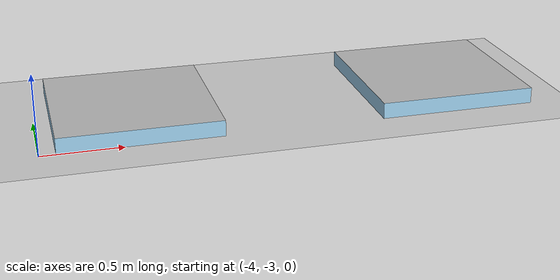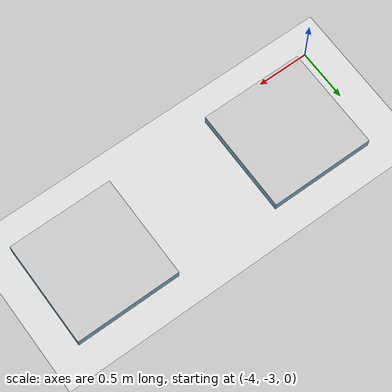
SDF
<sdf version='1.9'>
  <world name='bouncing_world/bouncing_world'>
    <physics type="ode">
      <max_step_size>0.001</max_step_size>
      <real_time_factor>1</real_time_factor>
      <real_time_update_rate>1000</real_time_update_rate>
    </physics>
    <gravity>0 0 -9.8</gravity>
    <magnetic_field>6e-06 2.3e-05 -4.2e-05</magnetic_field>
    <atmosphere type='adiabatic'/>
    <scene>
      <ambient>0.4 0.4 0.4 1</ambient>
      <background>0.7 0.7 0.7 1</background>
      <shadows>true</shadows>
    </scene>
    <model name='ground_plane'>
      <static>true</static>
      <link name='link'>
        <collision name='collision'>
          <geometry>
            <plane>
              <normal>0 0 1</normal>
              <size>100 100</size>
            </plane>
          </geometry>
          <surface>
            <friction>
              <ode/>
            </friction>
            <bounce/>
            <contact/>
          </surface>
        </collision>
        <visual name='visual'>
          <geometry>
            <plane>
              <normal>0 0 1</normal>
              <size>100 100</size>
            </plane>
          </geometry>
          <material>
            <ambient>0.8 0.8 0.8 1</ambient>
            <diffuse>0.8 0.8 0.8 1</diffuse>
            <specular>0.8 0.8 0.8 1</specular>
          </material>
        </visual>
        <pose>0 0 0 0 -0 0</pose>
        <inertial>
          <pose>0 0 0 0 -0 0</pose>
          <mass>1</mass>
          <inertia>
            <ixx>1</ixx>
            <ixy>0</ixy>
            <ixz>0</ixz>
            <iyy>1</iyy>
            <iyz>0</iyz>
            <izz>1</izz>
          </inertia>
        </inertial>
        <enable_wind>false</enable_wind>
      </link>
      <pose>0 0 0 0 -0 0</pose>
      <self_collide>false</self_collide>
    </model>

    <model name='square_panel'>
      <link name='link'>
        <visual name='visual'>
          <geometry>
            <mesh>
              <uri>assets/square_panel.dae</uri>
            </mesh>
          </geometry>
        </visual>
        <collision name='collision'>
          <geometry>
            <mesh>
              <uri>assets/square_panel.dae</uri>
            </mesh>
          </geometry>
        </collision>
        <pose>0 0 0 0 -0 0</pose>
        <inertial>
          <pose>0 0 0 0 -0 0</pose>
          <mass>1</mass>
          <inertia>
            <ixx>1</ixx>
            <ixy>0</ixy>
            <ixz>0</ixz>
            <iyy>1</iyy>
            <iyz>0</iyz>
            <izz>1</izz>
          </inertia>
        </inertial>
        <enable_wind>false</enable_wind>
      </link>
      <pose>-1.90021 -1.99475 0 0 -0 0</pose>
      <static>false</static>
      <self_collide>false</self_collide>
    </model>

    <model name='circle_panel'>
      <link name='link'>
        <visual name='visual'>
          <geometry>
            <mesh>
              <uri>assets/circle_panel.dae</uri>
            </mesh>
          </geometry>
        </visual>
        <collision name='collision'>
          <geometry>
            <mesh>
              <uri>assets/circle_panel.dae</uri>
            </mesh>
          </geometry>
        </collision>
        <pose>0 0 0 0 -0 0</pose>
        <inertial>
          <pose>0 0 0 0 -0 0</pose>
          <mass>1</mass>
          <inertia>
            <ixx>1</ixx>
            <ixy>0</ixy>
            <ixz>0</ixz>
            <iyy>1</iyy>
            <iyz>0</iyz>
            <izz>1</izz>
          </inertia>
        </inertial>
        <enable_wind>false</enable_wind>
      </link>
      <pose>-3.90021 -1.99475 0 0 -0 0</pose>
      <static>false</static>
      <self_collide>false</self_collide>
    </model>

    <light name='sun' type='directional'>
      <pose>0 0 10 0 -0 0</pose>
      <cast_shadows>true</cast_shadows>
      <intensity>1</intensity>
      <direction>-0.5 0.1 -0.9</direction>
      <diffuse>0.8 0.8 0.8 1</diffuse>
      <specular>0.2 0.2 0.2 1</specular>
      <attenuation>
        <range>1000</range>
        <linear>0.01</linear>
        <constant>0.90000000000000002</constant>
        <quadratic>0.001</quadratic>
      </attenuation>
      <spot>
        <inner_angle>0</inner_angle>
        <outer_angle>0</outer_angle>
        <falloff>0</falloff>
      </spot>
    </light>
  </world>
</sdf>
